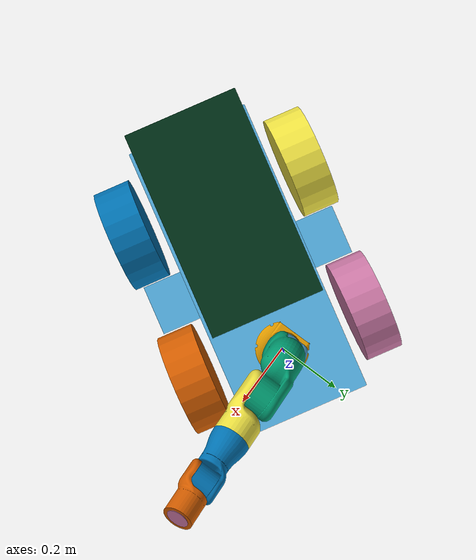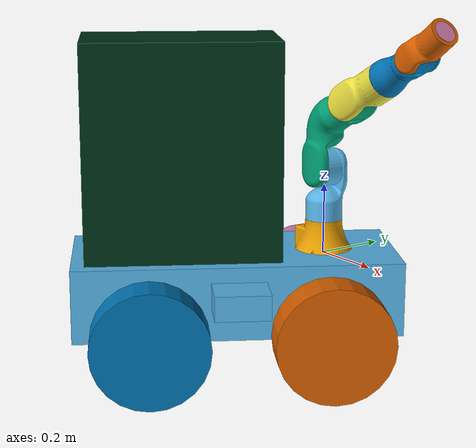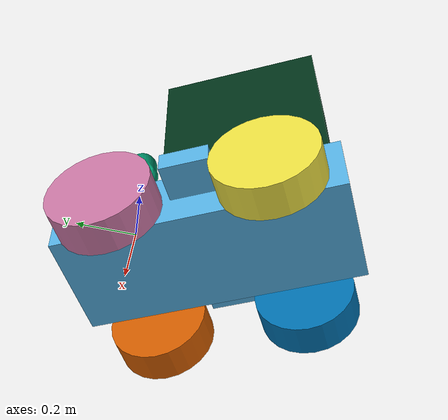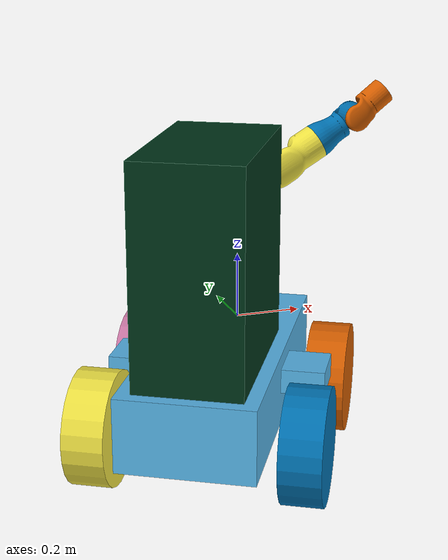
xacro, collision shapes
<?xml version="1.0"?>
<robot xmlns:xacro="http://www.ros.org/wiki/xacro" name="igus_rebel">

	<!-- Controller settings, only enable a single one in the launch file -->
	<xacro:arg name="hardware_protocol" default="cri" />

	<!-- Gripper selection -->
	<xacro:arg name="gripper" default="none" />

	<xacro:arg name="load_base" default="true" />

	<!-- Include and call rebel macro -->
	<xacro:include filename="$(find igus_rebel_description_ros2)/urdf/igus_rebel.description.xacro" />
	<xacro:igus_rebel_description />

	<!-- controller macro -->
	<xacro:include filename="$(find igus_rebel_description_ros2)/urdf/igus_rebel.control.xacro" />
	<xacro:igus_rebel_control hardware_protocol="$(arg hardware_protocol)" />

	<!-- Add world link -->
	<link name="world" />
	<joint name="world_to_base" type="fixed">
		<parent link="world" />
		<child link="base_link" />
		<origin xyz="0.0 0.0 0.0" rpy="0.0 0.0 0.0" />
	</joint>

	<!-- Grippers -->
	<xacro:include filename="$(find igus_rebel_description_ros2)/urdf/grippers/grippers.xacro" />
	<xacro:gripper gripper_type="$(arg gripper)" />

	<!-- Load base -->
	<xacro:if value="$(arg load_base)">

		<!-- Mobile Robot base -->
		<xacro:include filename="$(find igus_rebel_description_ros2)/urdf/mobile_robot/scout_v2.xacro" />

		<joint name="base_link_to_rebel_support" type="fixed">
			<parent link="base_link" />
			<child link="rebel_support" />
			<origin xyz="0.0 0.0 0.0" rpy="0 0 ${pi/3}" />
		</joint>

		<link name="rebel_support" />

		<!-- virtual joint acting as a link between base_link and mobile_robot_base_link -->
		<joint name="base_link_to_mobile_robot_base_link" type="fixed">
			<parent link="rebel_support" />
			<child link="mobile_robot_base_link" />
			<origin xyz="-0.26 0.0 -0.1" rpy="0 0 ${pi}" />
		</joint>

		<!-- castle with tower mounting sensors, batteries, computer and everyhting else-->
		<xacro:include filename="$(find igus_rebel_description_ros2)/urdf/mobile_robot/castle.xacro" />

	</xacro:if>

</robot>

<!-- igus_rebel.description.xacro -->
<robot xmlns:xacro="http://www.ros.org/wiki/xacro" name="igus_rebel">
	<xacro:macro name="igus_rebel_description">
		<link name="base_link">
			<visual>
				<geometry>
					<mesh filename="file://$(find igus_rebel_description_ros2)/meshes/new/Joint0.dae" />
				</geometry>
			</visual>
			<collision>
				<geometry>
					<mesh filename="file://$(find igus_rebel_description_ros2)/meshes/new/Joint0.dae" />
				</geometry>
			</collision>
			<inertial>
				<mass value="1.0" />
				<inertia ixx="1.0" ixy="0.0" ixz="0.0" iyy="1.0" iyz="0.0" izz="1.0" />
			</inertial>
		</link>
		<joint name="joint1" type="revolute">
			<parent link="base_link" />
			<child link="link_1" />
			<origin rpy="0.0 0.0 0.0" xyz="0.0 0 0.100" />
			<axis xyz="0 0 1" />
			<limit effort="330.0" lower="${-pi*179/180}" upper="${pi*179/180}" velocity="${pi*45/180}" />
		</joint>
		<link name="link_1">
			<visual>
				<geometry>
					<mesh filename="file://$(find igus_rebel_description_ros2)/meshes/new/Joint1.dae" />
				</geometry>
				<origin rpy="0 0 0" xyz="0 0 0" />
			</visual>
			<collision>
				<geometry>
					<mesh filename="file://$(find igus_rebel_description_ros2)/meshes/new/Joint1.dae" />
				</geometry>
				<origin rpy="0 0 0" xyz="0 0 0" />
			</collision>
			<inertial>
				<mass value="0.1" />
				<inertia ixx="0.03" ixy="0.0" ixz="0.0" iyy="0.03" iyz="0.0" izz="0.03" />
			</inertial>
		</link>
		<joint name="joint2" type="revolute">
			<parent link="link_1" />
			<child link="link_2" />
			<origin rpy="0.0 ${pi/6} 0.0" xyz="0.0 0 0.149" />
			<axis xyz="0 1 0" />
			<!-- pi*2/3 are the physical limits, but to avoid any collisions we set the actual limits lower -->
			<limit effort="330.0" lower="${-pi*11/18}" upper="${pi*11/18}" velocity="${pi*45/180}" />
		</joint>
		<link name="link_2">
			<visual>
				<geometry>
					<mesh filename="file://$(find igus_rebel_description_ros2)/meshes/new/Joint2.dae" />
				</geometry>
				<origin rpy="0 0 0" xyz="0 0 0" />
			</visual>
			<collision>
				<geometry>
					<mesh filename="file://$(find igus_rebel_description_ros2)/meshes/new/Joint2.dae" />
				</geometry>
				<origin rpy="0 0 0" xyz="0 0 0" />
			</collision>
			<inertial>
				<mass value="0.1" />
				<inertia ixx="0.03" ixy="0.0" ixz="0.0" iyy="0.03" iyz="0.0" izz="0.03" />
			</inertial>
		</link>
		<joint name="joint3" type="revolute">
			<parent link="link_2" />
			<child link="link_5" />
			<origin rpy="0.0 ${pi/6} 0.0" xyz="0.0 0.0 0.2384" />
			<axis xyz="0 1 0" />
			<!-- pi*2/3 are the physical limits, but to avoid any collisions we set the actual limits lower -->
			<limit effort="330.0" lower="${-pi*11/18}" upper="${pi*11/18}" velocity="${pi*45/180}" />
		</joint>
		<link name="link_5">
			<visual>
				<geometry>
					<mesh filename="file://$(find igus_rebel_description_ros2)/meshes/new/Joint3.dae" />
				</geometry>
				<origin rpy="0 0 0" xyz="0 0 0" />
			</visual>
			<collision>
				<geometry>
					<mesh filename="file://$(find igus_rebel_description_ros2)/meshes/new/Joint3.dae" />
				</geometry>
				<origin rpy="0 0 0" xyz="0 0 0" />
			</collision>
			<inertial>
				<mass value="0.1" />
				<inertia ixx="0.03" ixy="0.0" ixz="0.0" iyy="0.03" iyz="0.0" izz="0.03" />
			</inertial>
		</link>
		<joint name="joint4" type="revolute">
			<parent link="link_5" />
			<child link="link_6" />
			<!-- TODO The 0.03m offset are most likely caused by the mesh file (Issue 15)-->
			<origin rpy="0.0 0.0 0.0" xyz="0.0 0 ${0.149 - 0.03}" />
			<axis xyz="0 0 1" />
			<limit effort="330.0" lower="${-pi*179/180}" upper="${pi*179/180}" velocity="${pi*45/180}" />
		</joint>
		<link name="link_6">
			<visual>
				<geometry>
					<mesh filename="file://$(find igus_rebel_description_ros2)/meshes/new/Joint4.dae" />
				</geometry>
				<origin rpy="0 0 0" xyz="0 0 0" />
			</visual>
			<collision>
				<geometry>
					<mesh filename="file://$(find igus_rebel_description_ros2)/meshes/new/Joint4.dae" />
				</geometry>
				<origin rpy="0 0 0" xyz="0 0 0" />
			</collision>
			<inertial>
				<mass value="0.1" />
				<inertia ixx="0.03" ixy="0.0" ixz="0.0" iyy="0.03" iyz="0.0" izz="0.03" />
			</inertial>
		</link>
		<joint name="joint5" type="revolute">
			<parent link="link_6" />
			<child link="link_7" />
			<!-- TODO The 0.03m offset are most likely caused by the mesh file (Issue 15) -->
			<origin rpy="0.0 ${-pi/24} 0.0" xyz="0.0 0 ${0.14 + 0.03}" />
			<axis xyz="0 1 0" />
			<limit effort="330.0" lower="${-pi*19/36 + pi/24}" upper="${pi*19/36 + pi/24}" velocity="${pi*45/180}" />
		</joint>
		<link name="link_7">
			<visual>
				<geometry>
					<mesh filename="file://$(find igus_rebel_description_ros2)/meshes/new/Joint5.dae" />
				</geometry>
				<origin rpy="0 0 0" xyz="0 0 0" />
			</visual>
			<collision>
				<geometry>
					<mesh filename="file://$(find igus_rebel_description_ros2)/meshes/new/Joint5.dae" />
				</geometry>
				<origin rpy="0 0 0" xyz="0 0 0" />
			</collision>
			<inertial>
				<mass value="0.1" />
				<inertia ixx="0.03" ixy="0.0" ixz="0.0" iyy="0.03" iyz="0.0" izz="0.03" />
			</inertial>
		</link>

		<joint name="joint6" type="revolute">
			<parent link="link_7" />
			<child link="link_8" />
			<origin rpy="0.0 0.0 0.0" xyz="0.0 0 0.1208" />
			<axis xyz="0 0 1" />
			<limit effort="330.0" lower="${-pi*179/180}" upper="${pi*179/180}" velocity="${pi*45/180}" />
		</joint>

		<link name="link_8">
			<visual>
				<geometry>
					<mesh filename="file://$(find igus_rebel_description_ros2)/meshes/new/Joint6.dae" />
				</geometry>
				<origin rpy="0 0 0" xyz="0.0 0 0" />
			</visual>
			<collision>
				<geometry>
					<mesh filename="file://$(find igus_rebel_description_ros2)/meshes/new/Joint6.dae" />
				</geometry>
				<origin rpy="0 0 0" xyz="0.0 0 0" />
			</collision>
			<inertial>
				<mass value="0.1" />
				<inertia ixx="0.03" ixy="0.0" ixz="0.0" iyy="0.03" iyz="0.0" izz="0.03" />
			</inertial>
		</link>
		<joint name="joint7" type="fixed">
			<parent link="link_8" />
			<child link="flange" />
			<origin rpy="0.0 ${-pi/2} 0.0" xyz="0.0 0 0.0012" />
			<axis xyz="0 0 0" />
		</joint>
		<link name="flange">
		</link>

	</xacro:macro>
</robot>

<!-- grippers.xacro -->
<robot xmlns:xacro="http://www.ros.org/wiki/xacro" name="grippers">

	<!-- Template file for configuring grippers on the robot manipulator -->

	<material name="dark_green">
		<color rgba="${5/255.0} ${100/255.0} ${5/255.0} 1.000" />
	</material>

	<xacro:macro name="gripper" params="gripper_type">
		<xacro:if value="${gripper_type == 'camera'}">

			<!-- links the flange on the last joint to the gripper mount -->
			<joint name="flange_to_mount" type="fixed">
				<parent link="flange" />
				<child link="camera_mount" />
				<origin rpy="0.0 0.0 0.0" xyz="0.0 0.0 0.0" />
				<axis xyz="0 0 0" />
			</joint>

			<!-- camera mount urdf produced with fusion 360 urdf converter plugin-->
			<link name="camera_mount">
				<inertial>
					<origin xyz="-0.01802331112330381 -0.0023580203613042293 0.03423412904225139" rpy="0 0 0" />
					<mass value="1.0033" />
					<inertia ixx="0.001725" iyy="0.00146" izz="0.000623" ixy="-2.3e-05" iyz="0.000102" ixz="0.000224" />
				</inertial>
				<visual>
					<origin xyz="0.008 0 0" rpy="0 0 ${pi}" />
					<geometry>
						<mesh filename="file://$(find igus_rebel_description_ros2)/meshes/camera_mount.stl"
							scale="0.001 0.001 0.001" />
					</geometry>
					<material name="dark_green" />
				</visual>
				<collision>
					<origin xyz="0.008 0 0" rpy="0 0 ${pi}" />
					<geometry>
						<mesh filename="file://$(find igus_rebel_description_ros2)/meshes/camera_mount.stl"
							scale="0.001 0.001 0.001" />
					</geometry>
				</collision>
			</link>

			<joint name="flange_to_toucher" type="fixed">
				<parent link="flange" />
				<child link="toucher_cylinder" />
				<origin rpy="0.0 0.0 0.0" xyz="0.0 0.0 0.0" />
				<axis xyz="0 0 0" />
			</joint>

			<!-- toucher is a cylindrical approximation of the pointer for touching objects -->
			<!-- 11 cm = length of cylinder -->
			<link name="toucher_cylinder">
				<inertial>
					<origin xyz="0.055 0.0 0.0" rpy="0.0 ${pi/2.0} 0.0" />
					<mass value="0.1" />
					<inertia ixx="0.0001" iyy="0.0001" izz="0.0001" ixy="0" iyz="0" ixz="0" />
				</inertial>
				<visual>
					<origin xyz="0.055 0.0 0.0" rpy="0.0 ${pi/2.0} 0.0" />
					<geometry>
						<cylinder length="0.11" radius="0.015" />
					</geometry>
					<material name="dark_green" />
				</visual>
				<collision>
					<origin xyz="0.055 0.0 0.0" rpy="0.0 ${pi/2.0} 0.0" />
					<geometry>
						<cylinder length="0.11" radius="0.015" />
					</geometry>
				</collision>
			</link>

			<joint name="flange_to_point" type="fixed">
				<parent link="flange" />
				<child link="tip_link" />
				<origin xyz="0.11 0.0 0.0" rpy="0.0 0.0 0.0" />
				<axis xyz="0.0 0.0 0.0" />
			</joint>

			<link name="tip_link" />

			<!-- positions the camera inside the structure -->
			<joint name="mount_to_cam" type="fixed">
				<parent link="camera_mount" />
				<child link="camera_insert" />
				<origin rpy="0.0 0.0 0.0" xyz="0.038 0.0 0.065" />
				<axis xyz="0.0 0.0 0.0" />
			</joint>

			<link name="camera_insert" />

			<!-- includes the realsense D435 ros2 description file and its collision box-->
			<xacro:arg name="use_nominal_extrinsics" default="false" />
			<xacro:arg name="add_plug" default="true" />
			<xacro:arg name="use_mesh" default="true" />
			<xacro:include filename="$(find realsense2_description)/urdf/_d435.urdf.xacro" />

			<xacro:sensor_d435 parent="camera_insert" use_nominal_extrinsics="$(arg use_nominal_extrinsics)"
				add_plug="$(arg add_plug)" use_mesh="$(arg use_mesh)">
				<origin xyz="0.0 0 0" rpy="0 0 0" />
			</xacro:sensor_d435>

		</xacro:if>
	</xacro:macro>
</robot>

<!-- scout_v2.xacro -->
<robot name="scout_v2" xmlns:xacro="http://ros.org/wiki/xacro">

	<!-- Variables -->
	<xacro:property name="M_PI" value="3.14159" />

	<!-- Vehicle Geometries -->
	<xacro:property name="base_x_size" value="0.9250000" />
	<xacro:property name="base_y_size" value="0.380000" />
	<xacro:property name="base_z_size" value="0.210000" />

	<xacro:property name="wheelbase" value="0.498" />
	<xacro:property name="track" value="0.58306" />
	<xacro:property name="wheel_vertical_offset" value="-0.0702" />

	<xacro:property name="wheel_length" value="1.1653e-01" />
	<xacro:property name="wheel_radius" value="1.6459e-01" />

	<!-- Base link -->
	<link name="mobile_robot_base_link">
		<visual>
			<origin xyz="0 0 0" rpy="0 0 0" />
			<geometry>
				<mesh filename="file://$(find igus_rebel_description_ros2)/meshes/mobile_robot/mobile_robot_base_link.dae" />
			</geometry>
		</visual>
		<collision>
			<origin xyz="0 0 0.008" rpy="0 0 0" />
			<geometry>
				<box size="${base_x_size} ${base_y_size} ${base_z_size}" />
			</geometry>
		</collision>
		<collision>
			<origin xyz="0 0 ${base_z_size/6}" rpy="0 0 0" />
			<geometry>
				<box size="${base_x_size/6} ${base_y_size*1.65} ${base_z_size/3}" />
			</geometry>
		</collision>
	</link>

	<link name="inertial_link">
		<inertial>
			<mass value="50" />
			<origin xyz="0.0 0.0 0.0" />
			<inertia ixx="2.288641" ixy="0" ixz="0" iyy="5.103976" iyz="0" izz="3.431465" />
		</inertial>
	</link>

	<joint name="inertial_joint" type="fixed">
		<origin xyz="0 0 0" rpy="0 0 0" />
		<parent link="mobile_robot_base_link" />
		<child link="inertial_link" />
	</joint>

	<!-- Scout wheel macros -->
	<xacro:include filename="$(find igus_rebel_description_ros2)/urdf/mobile_robot/scout_wheel_type1.xacro" />
	<xacro:include filename="$(find igus_rebel_description_ros2)/urdf/mobile_robot/scout_wheel_type2.xacro" />
	<!-- wheel labeled from 0 to 3, conter-clockwise, starting from front right wheel -->
	<!-- motor 1 and 2 (left side) are mechanically installed in a reversed direction -->
	<xacro:scout_wheel_type1 wheel_prefix="front_right" x="${wheelbase/2}" y="${-track/2}" z="${wheel_vertical_offset}"
		phi="${pi}" />

	<xacro:scout_wheel_type2 wheel_prefix="front_left" x="${wheelbase/2}" y="${track/2}" z="${wheel_vertical_offset}" phi="0" />

	<xacro:scout_wheel_type1 wheel_prefix="rear_left" x="${-wheelbase/2}" y="${track/2}" z="${wheel_vertical_offset}" phi="0" />

	<xacro:scout_wheel_type2 wheel_prefix="rear_right" x="${-wheelbase/2}" y="${-track/2}" z="${wheel_vertical_offset}"
		phi="${pi}" />

	<link name="front_mount" />

	<joint name="front_mount_joint" type="fixed">
		<origin xyz="0.325 0 0.112701" rpy="0 0 0" />
		<parent link="mobile_robot_base_link" />
		<child link="front_mount" />
	</joint>

	<link name="rear_mount" />

	<joint name="rear_mount_joint" type="fixed">
		<origin xyz="-0.325 0 0.112701" rpy="0 0 0" />
		<parent link="mobile_robot_base_link" />
		<child link="rear_mount" />
	</joint>

	<!-- Gazebo definitions  -->
</robot>

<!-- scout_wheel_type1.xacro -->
<robot xmlns:xacro="http://ros.org/wiki/xacro" name="scout_v2">

	<xacro:macro name="scout_wheel_type1" params="wheel_prefix x y z phi">

		<link name="${wheel_prefix}_wheel_link">
			<inertial>
				<mass value="8" />
				<origin xyz="0 0 0" />
				<inertia ixx="0.1171" ixy="0" ixz="0" iyy="0.1361" iyz="0" izz="0.1171" />
			</inertial>
			<visual>
				<origin xyz="0 0 0" rpy="0 0 0" />
				<geometry>
					<mesh filename="file://$(find igus_rebel_description_ros2)/meshes/mobile_robot/wheel_type1.dae" />
				</geometry>
			</visual>
			<collision>
				<origin xyz="0 0 0" rpy="${pi/2} 0 0" />
				<geometry>
					<cylinder length="${wheel_length}" radius="${wheel_radius}" />
				</geometry>
				<contact>
					<ode>
						<min_depth>0.001</min_depth>
					</ode>
				</contact>
			</collision>
		</link>

		<joint name="${wheel_prefix}_wheel" type="continuous">
			<parent link="mobile_robot_base_link" />
			<child link="${wheel_prefix}_wheel_link" />
			<origin xyz="${x} ${y} ${z}" rpy="${phi} 0.0 0.0" />
			<axis xyz="0 -1 0" rpy="0 0 0" />
			<dynamics damping="0.0" friction="20" />
		</joint>
	</xacro:macro>

</robot>

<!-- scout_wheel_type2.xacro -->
<robot xmlns:xacro="http://ros.org/wiki/xacro" name="scout_v2">

	<xacro:macro name="scout_wheel_type2" params="wheel_prefix x y z phi">

		<link name="${wheel_prefix}_wheel_link">
			<inertial>
				<mass value="8" />
				<origin xyz="0 0 0" />
				<inertia ixx="0.1171" ixy="0" ixz="0" iyy="0.1361" iyz="0" izz="0.1171" />
			</inertial>
			<visual>
				<origin xyz="0 0 0" rpy="0 0 0" />
				<geometry>
					<mesh filename="file://$(find igus_rebel_description_ros2)/meshes/mobile_robot/wheel_type1.dae" />
				</geometry>
			</visual>
			<collision>
				<origin xyz="0 0 0" rpy="${pi/2} 0 0" />
				<geometry>
					<cylinder length="${wheel_length}" radius="${wheel_radius}" />
				</geometry>
				<contact>
					<ode>
						<min_depth>0.001</min_depth>
					</ode>
				</contact>
			</collision>
		</link>

		<joint name="${wheel_prefix}_wheel" type="continuous">
			<parent link="mobile_robot_base_link" />
			<child link="${wheel_prefix}_wheel_link" />
			<origin xyz="${x} ${y} ${z}" rpy="${phi} 0.0 0.0" />
			<axis xyz="0 -1 0" rpy="0 0 0" />
			<dynamics damping="0.0" friction="20" />
		</joint>
	</xacro:macro>

</robot>

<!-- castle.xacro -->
<robot name="scout_v2" xmlns:xacro="http://ros.org/wiki/xacro">

	<joint name="tower" type="fixed">
		<parent link="mobile_robot_base_link" />
		<child link="tower_link" />
		<origin rpy="0.0 0.0 0" xyz="0.15 0 0.1" />
		<axis xyz="0 0 -1" />
	</joint>

	<link name="tower_link">
		<inertial>
			<mass value="1" />
			<inertia ixx="1" ixy="1" ixz="1" iyy="0" iyz="0" izz="0" />
		</inertial>
		<visual>
			<origin xyz="0.0 0 0.3" rpy="0 0 0" />
			<geometry>
				<box size="0.55 0.3 0.65" />
			</geometry>
			<material name="dark_blue">
				<color rgba="0.0 ${51/255} ${25/255} 1.0" />
			</material>
		</visual>
		<collision>
			<origin xyz="0.0 0 0.3" rpy="0 0 0" />
			<geometry>
				<box size="0.55 0.3 0.65" />
			</geometry>
		</collision>
	</link>

</robot>
